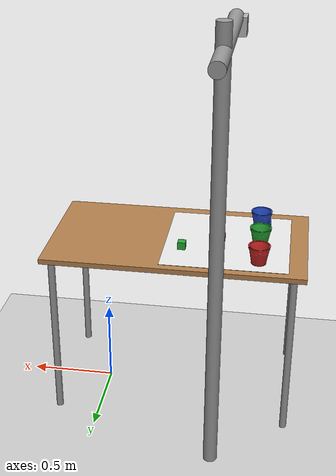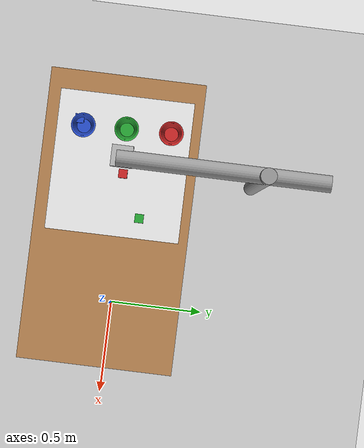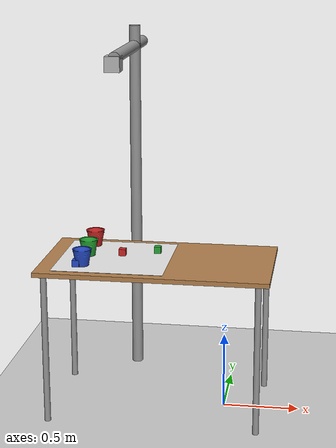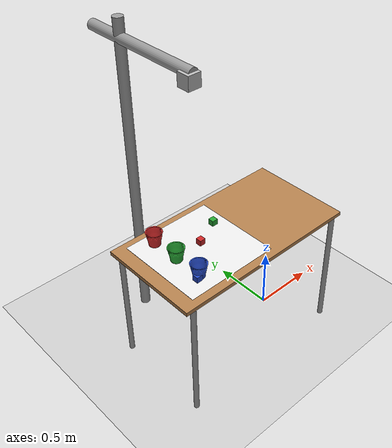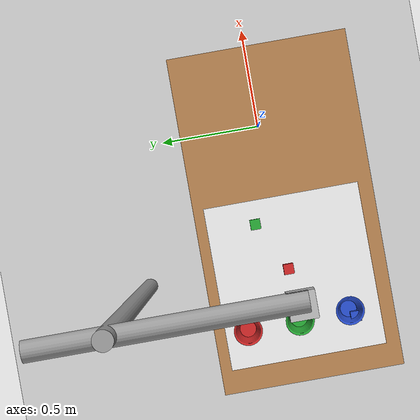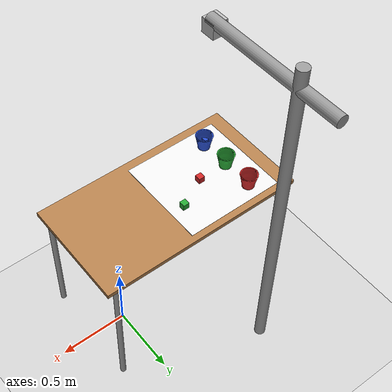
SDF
<sdf version="1.6">
 <world name="default">
  <model name="ground_plane">
   <static>1</static>
   <link name="link">
    <collision name="collision">
     <geometry><plane><normal>0 0 1</normal><size>100 100</size></plane></geometry>
     <surface>
      <contact><collide_bitmask>65535</collide_bitmask></contact>
      <friction><ode><mu>100</mu><mu2>50</mu2></ode></friction>
     </surface>
    </collision>
    <visual name="visual">
     <cast_shadows>0</cast_shadows>
     <geometry><plane><normal>0 0 1</normal><size>100 100</size></plane></geometry>
     <material>
      <script><uri>file://media/materials/scripts/gazebo.material</uri><name>Gazebo/Grey</name></script>
     </material>
    </visual>
   </link>
  </model>
  <gravity>0 0 -9.8</gravity>
  <magnetic_field>6e-06 2.3e-05 -4.2e-05</magnetic_field>
  <atmosphere type="adiabatic"/>
  <physics name="default_physics" default="0" type="ode">
   <max_step_size>0.001</max_step_size>
   <real_time_factor>1</real_time_factor>
   <real_time_update_rate>1000</real_time_update_rate>
  </physics>
  <scene><ambient>0.4 0.4 0.4 1</ambient><background>0.7 0.7 0.7 1</background><shadows>1</shadows></scene>
  <audio><device>default</device></audio>
  <spherical_coordinates>
   <surface_model>EARTH_WGS84</surface_model>
   <latitude_deg>0</latitude_deg>
   <longitude_deg>0</longitude_deg>
   <elevation>0</elevation>
   <heading_deg>0</heading_deg>
  </spherical_coordinates>
  <model name="table">
   <static>1</static>
   <link name="link">
    <collision name="surface">
     <pose>0 0 1 0 -0 0</pose>
     <geometry><box><size>1.5 0.8 0.03</size></box></geometry>
     <surface><friction><ode><mu>0.6</mu><mu2>0.6</mu2></ode></friction></surface>
    </collision>
    <visual name="visual1">
     <pose>0 0 1 0 -0 0</pose>
     <geometry><box><size>1.5 0.8 0.03</size></box></geometry>
     <material>
      <script><uri>file://media/materials/scripts/gazebo.material</uri><name>Gazebo/Wood</name></script>
     </material>
    </visual>
    <collision name="front_left_leg">
     <pose>0.68 0.38 0.5 0 -0 0</pose>
     <geometry><cylinder><radius>0.02</radius><length>1</length></cylinder></geometry>
    </collision>
    <visual name="front_left_leg">
     <pose>0.68 0.38 0.5 0 -0 0</pose>
     <geometry><cylinder><radius>0.02</radius><length>1</length></cylinder></geometry>
     <material>
      <script><uri>file://media/materials/scripts/gazebo.material</uri><name>Gazebo/Grey</name></script>
     </material>
    </visual>
    <collision name="front_right_leg">
     <pose>0.68 -0.38 0.5 0 -0 0</pose>
     <geometry><cylinder><radius>0.02</radius><length>1</length></cylinder></geometry>
    </collision>
    <visual name="front_right_leg">
     <pose>0.68 -0.38 0.5 0 -0 0</pose>
     <geometry><cylinder><radius>0.02</radius><length>1</length></cylinder></geometry>
     <material>
      <script><uri>file://media/materials/scripts/gazebo.material</uri><name>Gazebo/Grey</name></script>
     </material>
    </visual>
    <collision name="back_right_leg">
     <pose>-0.68 -0.38 0.5 0 -0 0</pose>
     <geometry><cylinder><radius>0.02</radius><length>1</length></cylinder></geometry>
    </collision>
    <visual name="back_right_leg">
     <pose>-0.68 -0.38 0.5 0 -0 0</pose>
     <geometry><cylinder><radius>0.02</radius><length>1</length></cylinder></geometry>
     <material>
      <script><uri>file://media/materials/scripts/gazebo.material</uri><name>Gazebo/Grey</name></script>
     </material>
    </visual>
    <collision name="back_left_leg">
     <pose>-0.68 0.38 0.5 0 -0 0</pose>
     <geometry><cylinder><radius>0.02</radius><length>1</length></cylinder></geometry>
    </collision>
    <visual name="back_left_leg">
     <pose>-0.68 0.38 0.5 0 -0 0</pose>
     <geometry><cylinder><radius>0.02</radius><length>1</length></cylinder></geometry>
     <material>
      <script><uri>file://media/materials/scripts/gazebo.material</uri><name>Gazebo/Grey</name></script>
     </material>
    </visual>
   </link>
   <pose>-0.433721 -0.027332 0 0 -0 0</pose>
  </model>
  <model name="white_plane">
   <link name="link">
    <inertial>
     <mass>1</mass>
     <inertia>
      <ixx>0.166667</ixx>
      <ixy>0</ixy>
      <ixz>0</ixz>
      <iyy>0.166667</iyy>
      <iyz>0</iyz>
      <izz>0.166667</izz>
     </inertia>
    </inertial>
    <visual name="visual">
     <geometry><box><size>0.722166 0.690238 0.01568</size></box></geometry>
     <material>
      <script><uri>file://media/materials/scripts/gazebo.material</uri><name>Gazebo/White</name></script>
     </material>
    </visual>
    <collision name="collision">
     <geometry><box><size>0.722166 0.690238 0.01568</size></box></geometry>
     <surface>
      <friction>
       <ode><mu>1</mu><mu2>1</mu2><fdir1>0 0 0</fdir1><slip1>0</slip1><slip2>0</slip2></ode>
       <torsional>
        <coefficient>1</coefficient>
        <patch_radius>0</patch_radius>
        <surface_radius>0</surface_radius>
        <use_patch_radius>1</use_patch_radius>
        <ode><slip>0</slip></ode>
       </torsional>
      </friction>
      <bounce><restitution_coefficient>0</restitution_coefficient><threshold>1e+06</threshold></bounce>
      <contact>
       <collide_without_contact>0</collide_without_contact>
       <collide_without_contact_bitmask>1</collide_without_contact_bitmask>
       <collide_bitmask>1</collide_bitmask>
       <ode>
        <soft_cfm>0</soft_cfm>
        <soft_erp>0.2</soft_erp>
        <kp>1e+13</kp>
        <kd>1</kd>
        <max_vel>0.01</max_vel>
        <min_depth>0</min_depth>
       </ode>
       <bullet>
        <split_impulse>1</split_impulse>
        <split_impulse_penetration_threshold>-0.01</split_impulse_penetration_threshold>
        <soft_cfm>0</soft_cfm>
        <soft_erp>0.2</soft_erp>
        <kp>1e+13</kp>
        <kd>1</kd>
       </bullet>
      </contact>
     </surface>
    </collision>
   </link>
   <static>1</static>
   <pose>-0.720538 -0.019866 1.0085 -3.7e-05 2e-06 0.002815</pose>
  </model>
  <model name="camera_pole">
   <link name="link">
    <inertial>
     <mass>0.0142937</mass>
     <inertia>
      <ixx>0.00723726</ixx>
      <ixy>0</ixy>
      <ixz>0</ixz>
      <iyy>0.00723726</iyy>
      <iyz>0</iyz>
      <izz>1.05574e-05</izz>
     </inertia>
    </inertial>
    <pose>-0.261375 0 0.727699 0 -0 0</pose>
    <visual name="visual">
     <geometry><cylinder><radius>0.0384346</radius><length>2.46404</length></cylinder></geometry>
     <material>
      <script><name>Gazebo/Grey</name><uri>file://media/materials/scripts/gazebo.material</uri></script>
     </material>
    </visual>
    <collision name="collision">
     <geometry><cylinder><radius>0.038435</radius><length>2.46404</length></cylinder></geometry>
     <surface>
      <friction>
       <ode><mu>1</mu><mu2>1</mu2><fdir1>0 0 0</fdir1><slip1>0</slip1><slip2>0</slip2></ode>
       <torsional>
        <coefficient>1</coefficient>
        <patch_radius>0</patch_radius>
        <surface_radius>0</surface_radius>
        <use_patch_radius>1</use_patch_radius>
        <ode><slip>0</slip></ode>
       </torsional>
      </friction>
      <bounce><restitution_coefficient>0</restitution_coefficient><threshold>1e+06</threshold></bounce>
      <contact>
       <collide_without_contact>0</collide_without_contact>
       <collide_without_contact_bitmask>1</collide_without_contact_bitmask>
       <collide_bitmask>1</collide_bitmask>
       <ode>
        <soft_cfm>0</soft_cfm>
        <soft_erp>0.2</soft_erp>
        <kp>1e+13</kp>
        <kd>1</kd>
        <max_vel>0.01</max_vel>
        <min_depth>0</min_depth>
       </ode>
       <bullet>
        <split_impulse>1</split_impulse>
        <split_impulse_penetration_threshold>-0.01</split_impulse_penetration_threshold>
        <soft_cfm>0</soft_cfm>
        <soft_erp>0.2</soft_erp>
        <kp>1e+13</kp>
        <kd>1</kd>
       </bullet>
      </contact>
     </surface>
    </collision>
   </link>
   <link name="link_0">
    <inertial>
     <mass>0.00633949</mass>
     <inertia>
      <ixx>0.000530804</ixx>
      <ixy>0</ixy>
      <ixz>0</ixz>
      <iyy>0.000530804</iyy>
      <iyz>0</iyz>
      <izz>5.02659e-06</izz>
     </inertia>
    </inertial>
    <pose>-0.263529 -0.204376 1.81994 1.5708 -0 0</pose>
    <visual name="visual">
     <geometry><cylinder><radius>0.0398221</radius><length>1</length></cylinder></geometry>
     <material>
      <lighting>1</lighting>
      <script><uri>file://media/materials/scripts/gazebo.material</uri><name>Gazebo/Grey</name></script>
     </material>
    </visual>
    <collision name="collision">
     <geometry><cylinder><radius>0.039822</radius><length>1</length></cylinder></geometry>
     <surface>
      <friction>
       <ode><mu>1</mu><mu2>1</mu2><fdir1>0 0 0</fdir1><slip1>0</slip1><slip2>0</slip2></ode>
       <torsional>
        <coefficient>1</coefficient>
        <patch_radius>0</patch_radius>
        <surface_radius>0</surface_radius>
        <use_patch_radius>1</use_patch_radius>
        <ode><slip>0</slip></ode>
       </torsional>
      </friction>
      <bounce><restitution_coefficient>0</restitution_coefficient><threshold>1e+06</threshold></bounce>
      <contact>
       <collide_without_contact>0</collide_without_contact>
       <collide_without_contact_bitmask>1</collide_without_contact_bitmask>
       <collide_bitmask>1</collide_bitmask>
       <ode>
        <soft_cfm>0</soft_cfm>
        <soft_erp>0.2</soft_erp>
        <kp>1e+13</kp>
        <kd>1</kd>
        <max_vel>0.01</max_vel>
        <min_depth>0</min_depth>
       </ode>
       <bullet>
        <split_impulse>1</split_impulse>
        <split_impulse_penetration_threshold>-0.01</split_impulse_penetration_threshold>
        <soft_cfm>0</soft_cfm>
        <soft_erp>0.2</soft_erp>
        <kp>1e+13</kp>
        <kd>1</kd>
       </bullet>
      </contact>
     </surface>
    </collision>
   </link>
   <static>1</static>
   <pose>-0.454487 0.691599 0.500001 0 -0 0</pose>
  </model>
  <model name="camera">
   <link name="camera_link">
    <sensor name="camera1" type="camera">
     <update_rate>30</update_rate>
     <visualize>1</visualize>
     <camera name="head">
      <horizontal_fov>1.0</horizontal_fov>
      <image><width>800</width><height>800</height><format>R8G8B8</format></image>
      <clip><near>0.02</near><far>300</far></clip>
      <noise><type>gaussian</type><mean>0</mean><stddev>0.007</stddev></noise>
     </camera>
     <plugin name="camera_controller" filename="libgazebo_ros_camera.so">
      <alwaysOn>1</alwaysOn>
      <updateRate>0.0</updateRate>
      <cameraName>edo/camera</cameraName>
      <imageTopicName>image_raw</imageTopicName>
      <cameraInfoTopicName>camera_info</cameraInfoTopicName>
      <frameName>camera_link</frameName>
      <hackBaseline>0.07</hackBaseline>
      <distortionK1>0.0</distortionK1>
      <distortionK2>0.0</distortionK2>
      <distortionK3>0.0</distortionK3>
      <distortionT1>0.0</distortionT1>
      <distortionT2>0.0</distortionT2>
     </plugin>
    </sensor>
    <inertial>
     <mass>0.1</mass>
     <inertia>
      <ixx>0.000166667</ixx>
      <iyy>0.000166667</iyy>
      <izz>0.000166667</izz>
      <ixy>0</ixy>
      <ixz>0</ixz>
      <iyz>0</iyz>
     </inertia>
    </inertial>
    <visual name="visual"><geometry><box><size>0.1 0.1 0.1</size></box></geometry></visual>
    <collision name="collision">
     <geometry><box><size>0.1 0.1 0.1</size></box></geometry>
     <surface>
      <friction>
       <ode><mu>1</mu><mu2>1</mu2><fdir1>0 0 0</fdir1><slip1>0</slip1><slip2>0</slip2></ode>
       <torsional>
        <coefficient>1</coefficient>
        <patch_radius>0</patch_radius>
        <surface_radius>0</surface_radius>
        <use_patch_radius>1</use_patch_radius>
        <ode><slip>0</slip></ode>
       </torsional>
      </friction>
      <bounce><restitution_coefficient>0</restitution_coefficient><threshold>1e+06</threshold></bounce>
      <contact>
       <collide_without_contact>0</collide_without_contact>
       <collide_without_contact_bitmask>1</collide_without_contact_bitmask>
       <collide_bitmask>1</collide_bitmask>
       <ode>
        <soft_cfm>0</soft_cfm>
        <soft_erp>0.2</soft_erp>
        <kp>1e+13</kp>
        <kd>1</kd>
        <max_vel>0.01</max_vel>
        <min_depth>0</min_depth>
       </ode>
       <bullet>
        <split_impulse>1</split_impulse>
        <split_impulse_penetration_threshold>-0.01</split_impulse_penetration_threshold>
        <soft_cfm>0</soft_cfm>
        <soft_erp>0.2</soft_erp>
        <kp>1e+13</kp>
        <kd>1</kd>
       </bullet>
      </contact>
     </surface>
    </collision>
   </link>
   <static>1</static>
   <pose>-0.728969 0.01318 2.2823 3.14159 1.57079 3.14159</pose>
  </model>
  <light name="user_point_light_0" type="point">
   <pose>-0.397555 -0.169559 1 0 -0 0</pose>
   <diffuse>0.5 0.5 0.5 1</diffuse>
   <specular>0.1 0.1 0.1 1</specular>
   <attenuation>
    <range>20</range>
    <constant>0.5</constant>
    <linear>0.01</linear>
    <quadratic>0.001</quadratic>
   </attenuation>
   <cast_shadows>0</cast_shadows>
   <direction>0 0 -1</direction>
  </light>
  <light name="user_point_light_1" type="point">
   <pose>-0.364001 -0.065426 1 0 -0 0</pose>
   <diffuse>0.5 0.5 0.5 1</diffuse>
   <specular>0.1 0.1 0.1 1</specular>
   <attenuation>
    <range>20</range>
    <constant>0.5</constant>
    <linear>0.01</linear>
    <quadratic>0.001</quadratic>
   </attenuation>
   <cast_shadows>0</cast_shadows>
   <direction>0 0 -1</direction>
  </light>
  <light name="user_spot_light_0" type="spot">
   <pose>-0.203243 -0.241136 1 0 -0 0</pose>
   <diffuse>0.5 0.5 0.5 1</diffuse>
   <specular>0.1 0.1 0.1 1</specular>
   <direction>0 0 -1</direction>
   <attenuation>
    <range>20</range>
    <constant>0.5</constant>
    <linear>0.01</linear>
    <quadratic>0.001</quadratic>
   </attenuation>
   <cast_shadows>0</cast_shadows>
   <spot><inner_angle>0.6</inner_angle><outer_angle>1</outer_angle><falloff>1</falloff></spot>
  </light>
  <model name="cube_red">
   <pose>-0.68169 0.002191 1.04731 0.001828 0.000142 0.000168</pose>
   <link name="link">
    <inertial>
     <mass>1</mass>
     <inertia>
      <ixx>0.166667</ixx>
      <ixy>0</ixy>
      <ixz>0</ixz>
      <iyy>0.166667</iyy>
      <iyz>0</iyz>
      <izz>0.166667</izz>
     </inertia>
    </inertial>
    <collision name="collision"><geometry><box><size>0.045 0.045 0.045</size></box></geometry></collision>
    <visual name="visual">
     <geometry><box><size>0.045 0.045 0.045</size></box></geometry>
     <material>
      <script><uri>file://media/materials/scripts/gazebo.material</uri><name>Gazebo/Red</name></script>
     </material>
    </visual>
   </link>
  </model>
  <model name="cube_blue">
   <pose>-0.936105 -0.251511 1.03886 0.000294 -2e-06 0.00045</pose>
   <link name="link">
    <inertial>
     <mass>1</mass>
     <inertia>
      <ixx>0.166667</ixx>
      <ixy>0</ixy>
      <ixz>0</ixz>
      <iyy>0.166667</iyy>
      <iyz>0</iyz>
      <izz>0.166667</izz>
     </inertia>
    </inertial>
    <collision name="collision"><geometry><box><size>0.045 0.045 0.045</size></box></geometry></collision>
    <visual name="visual">
     <geometry><box><size>0.045 0.045 0.045</size></box></geometry>
     <material>
      <script><uri>file://media/materials/scripts/gazebo.material</uri><name>Gazebo/Blue</name></script>
     </material>
    </visual>
   </link>
  </model>
  <model name="cube_green">
   <pose>-0.464856 0.111915 1.03883 -4.2e-05 3e-06 0.000452</pose>
   <link name="link">
    <inertial>
     <mass>1</mass>
     <inertia>
      <ixx>0.166667</ixx>
      <ixy>0</ixy>
      <ixz>0</ixz>
      <iyy>0.166667</iyy>
      <iyz>0</iyz>
      <izz>0.166667</izz>
     </inertia>
    </inertial>
    <collision name="collision"><geometry><box><size>0.045 0.045 0.045</size></box></geometry></collision>
    <visual name="visual">
     <geometry><box><size>0.045 0.045 0.045</size></box></geometry>
     <material>
      <script><uri>file://media/materials/scripts/gazebo.material</uri><name>Gazebo/Green</name></script>
     </material>
    </visual>
   </link>
  </model>
  <model name="Bucket_Red">
   <link name="link_0">
    <inertial>
     <mass>4</mass>
     <inertia>
      <ixx>0.166667</ixx>
      <ixy>0</ixy>
      <ixz>0</ixz>
      <iyy>0.166667</iyy>
      <iyz>0</iyz>
      <izz>0.166667</izz>
     </inertia>
    </inertial>
    <pose>0 0 -5e-06 1.5708 -0 0</pose>
    <visual name="visual">
     <geometry><mesh><uri>model://Bucket/meshes/Bucketobject.stl</uri><scale>1 1 1</scale></mesh></geometry>
     <material>
      <lighting>1</lighting>
      <script><uri>file://media/materials/scripts/gazebo.material</uri><name>Gazebo/Red</name></script>
     </material>
    </visual>
    <collision name="collision">
     <geometry><mesh><uri>model://Bucket/meshes/Bucketobject.stl</uri><scale>1 1 1</scale></mesh></geometry>
     <surface>
      <friction>
       <ode><mu>1</mu><mu2>1</mu2><fdir1>0 0 0</fdir1><slip1>0</slip1><slip2>0</slip2></ode>
       <torsional>
        <coefficient>1</coefficient>
        <patch_radius>0</patch_radius>
        <surface_radius>0</surface_radius>
        <use_patch_radius>1</use_patch_radius>
        <ode><slip>0</slip></ode>
       </torsional>
      </friction>
      <bounce><restitution_coefficient>0</restitution_coefficient><threshold>1e+06</threshold></bounce>
      <contact>
       <collide_without_contact>0</collide_without_contact>
       <collide_without_contact_bitmask>1</collide_without_contact_bitmask>
       <collide_bitmask>1</collide_bitmask>
       <ode>
        <soft_cfm>0</soft_cfm>
        <soft_erp>0.2</soft_erp>
        <kp>1e+13</kp>
        <kd>1</kd>
        <max_vel>0.01</max_vel>
        <min_depth>0</min_depth>
       </ode>
       <bullet>
        <split_impulse>1</split_impulse>
        <split_impulse_penetration_threshold>-0.01</split_impulse_penetration_threshold>
        <soft_cfm>0</soft_cfm>
        <soft_erp>0.2</soft_erp>
        <kp>1e+13</kp>
        <kd>1</kd>
       </bullet>
      </contact>
     </surface>
    </collision>
   </link>
   <static>0</static>
   <pose>-0.912584 0.223248 1.01634 -3.9e-05 3e-06 -1.1e-05</pose>
  </model>
  <model name="Bucket_Blue">
   <link name="link_0">
    <inertial>
     <mass>4</mass>
     <inertia>
      <ixx>0.166667</ixx>
      <ixy>0</ixy>
      <ixz>0</ixz>
      <iyy>0.166667</iyy>
      <iyz>0</iyz>
      <izz>0.166667</izz>
     </inertia>
    </inertial>
    <pose>0 0 -5e-06 1.5708 -0 0</pose>
    <visual name="visual">
     <geometry><mesh><uri>model://Bucket/meshes/Bucketobject.stl</uri><scale>1 1 1</scale></mesh></geometry>
     <material>
      <lighting>1</lighting>
      <script><uri>file://media/materials/scripts/gazebo.material</uri><name>Gazebo/Blue</name></script>
     </material>
    </visual>
    <collision name="collision">
     <geometry><mesh><uri>model://Bucket/meshes/Bucketobject.stl</uri><scale>1 1 1</scale></mesh></geometry>
     <surface>
      <friction>
       <ode><mu>1</mu><mu2>1</mu2><fdir1>0 0 0</fdir1><slip1>0</slip1><slip2>0</slip2></ode>
       <torsional>
        <coefficient>1</coefficient>
        <patch_radius>0</patch_radius>
        <surface_radius>0</surface_radius>
        <use_patch_radius>1</use_patch_radius>
        <ode><slip>0</slip></ode>
       </torsional>
      </friction>
      <bounce><restitution_coefficient>0</restitution_coefficient><threshold>1e+06</threshold></bounce>
      <contact>
       <collide_without_contact>0</collide_without_contact>
       <collide_without_contact_bitmask>1</collide_without_contact_bitmask>
       <collide_bitmask>1</collide_bitmask>
       <ode>
        <soft_cfm>0</soft_cfm>
        <soft_erp>0.2</soft_erp>
        <kp>1e+13</kp>
        <kd>1</kd>
        <max_vel>0.01</max_vel>
        <min_depth>0</min_depth>
       </ode>
       <bullet>
        <split_impulse>1</split_impulse>
        <split_impulse_penetration_threshold>-0.01</split_impulse_penetration_threshold>
        <soft_cfm>0</soft_cfm>
        <soft_erp>0.2</soft_erp>
        <kp>1e+13</kp>
        <kd>1</kd>
       </bullet>
      </contact>
     </surface>
    </collision>
   </link>
   <static>0</static>
   <pose>-0.901466 -0.22622 1.01635 -7.9e-05 7e-06 -1.1e-05</pose>
  </model>
  <model name="Bucket_Green">
   <link name="link_0">
    <inertial>
     <mass>4</mass>
     <inertia>
      <ixx>0.166667</ixx>
      <ixy>0</ixy>
      <ixz>0</ixz>
      <iyy>0.166667</iyy>
      <iyz>0</iyz>
      <izz>0.166667</izz>
     </inertia>
    </inertial>
    <pose>0 0 -5e-06 1.5708 -0 0</pose>
    <visual name="visual">
     <geometry><mesh><uri>model://Bucket/meshes/Bucketobject.stl</uri><scale>1 1 1</scale></mesh></geometry>
     <material>
      <lighting>1</lighting>
      <script><uri>file://media/materials/scripts/gazebo.material</uri><name>Gazebo/Green</name></script>
     </material>
    </visual>
    <collision name="collision">
     <geometry><mesh><uri>model://Bucket/meshes/Bucketobject.stl</uri><scale>1 1 1</scale></mesh></geometry>
     <surface>
      <friction>
       <ode><mu>1</mu><mu2>1</mu2><fdir1>0 0 0</fdir1><slip1>0</slip1><slip2>0</slip2></ode>
       <torsional>
        <coefficient>1</coefficient>
        <patch_radius>0</patch_radius>
        <surface_radius>0</surface_radius>
        <use_patch_radius>1</use_patch_radius>
        <ode><slip>0</slip></ode>
       </torsional>
      </friction>
      <bounce><restitution_coefficient>0</restitution_coefficient><threshold>1e+06</threshold></bounce>
      <contact>
       <collide_without_contact>0</collide_without_contact>
       <collide_without_contact_bitmask>1</collide_without_contact_bitmask>
       <collide_bitmask>1</collide_bitmask>
       <ode>
        <soft_cfm>0</soft_cfm>
        <soft_erp>0.2</soft_erp>
        <kp>1e+13</kp>
        <kd>1</kd>
        <max_vel>0.01</max_vel>
        <min_depth>0</min_depth>
       </ode>
       <bullet>
        <split_impulse>1</split_impulse>
        <split_impulse_penetration_threshold>-0.01</split_impulse_penetration_threshold>
        <soft_cfm>0</soft_cfm>
        <soft_erp>0.2</soft_erp>
        <kp>1e+13</kp>
        <kd>1</kd>
       </bullet>
      </contact>
     </surface>
    </collision>
   </link>
   <static>0</static>
   <pose>-0.907965 -0.004886 1.01633 -4.1e-05 5e-06 -1.1e-05</pose>
  </model>
 </world>
</sdf>
